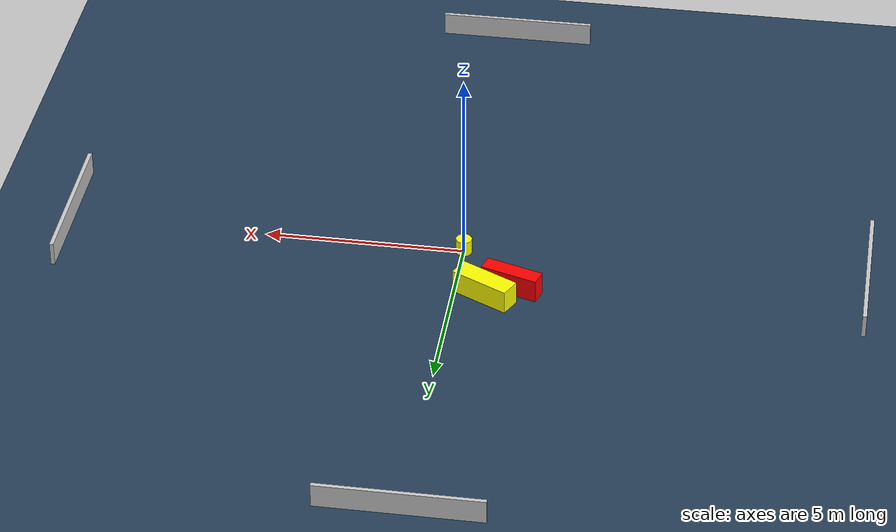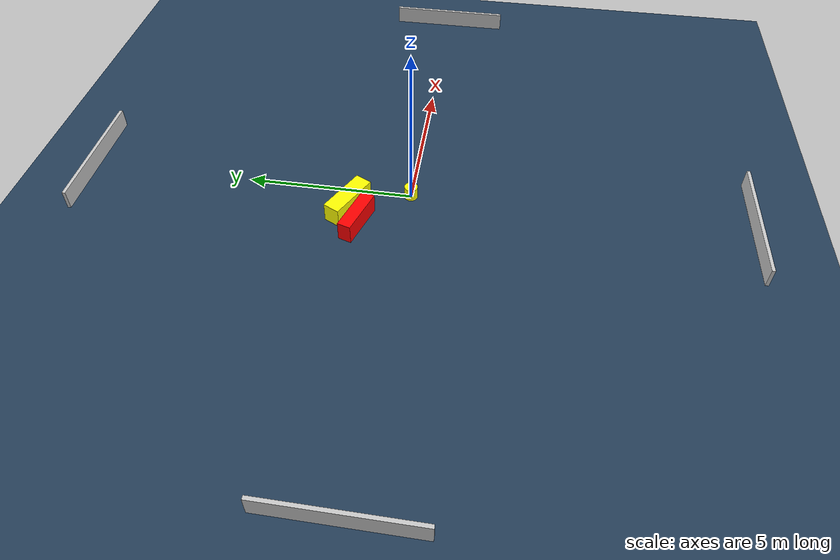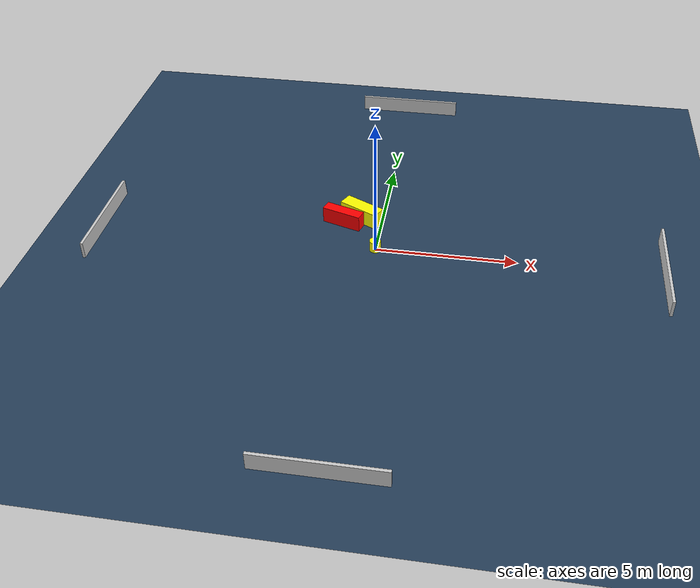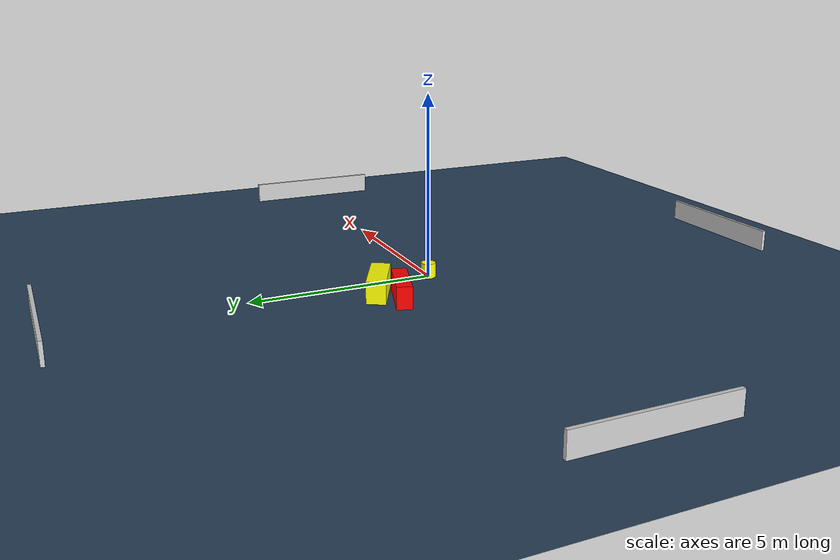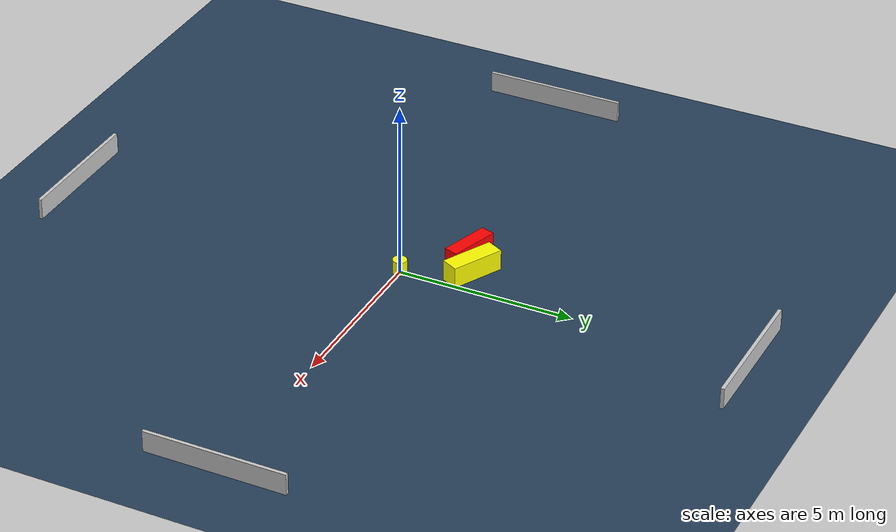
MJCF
<?xml version="1.0" ?>
<mujoco model="generated_environment">
  <option timestep="0.01" integrator="RK4" cone="elliptic"/>
  <default>
    <geom density="1"/>
  </default>
  <asset>
    <texture builtin="gradient" height="3072" name="skybox" rgb1="0.3 0.5 0.7" rgb2="0 0 0" type="skybox" width="512"/>
    <texture builtin="checker" height="300" name="groundplane" rgb1="0.2 0.3 0.4" rgb2="0.1 0.2 0.3" type="2d" width="300"/>
    <material name="groundplane" reflectance="0.2" texrepeat="5 5" texture="groundplane"/>
  </asset>
  <worldbody>
    <light dir="0 0 -1" directional="true" pos="0 0 1.5"/>
    <geom condim="3" friction="0.5 0.005 0.001" material="groundplane" name="floor" pos="0 0 0" size="0 0 0.05" type="plane"/>
    <body name="walls">
      <geom name="wall_1" condim="4" pos="-10.0 0.0 0.3" rgba="0.800000011920929 0.800000011920929 0.800000011920929 1.0" size="0.05 2.0 0.3" type="box"/>
      <geom name="wall_2" condim="4" pos="10.0 0.0 0.3" rgba="0.800000011920929 0.800000011920929 0.800000011920929 1.0" size="0.05 2.0 0.3" type="box"/>
      <geom name="wall_3" condim="4" pos="0.0 -10.0 0.3" rgba="0.800000011920929 0.800000011920929 0.800000011920929 1.0" size="2.0 0.05 0.3" type="box"/>
      <geom name="wall_4" condim="4" pos="0.0 10.0 0.3" rgba="0.800000011920929 0.800000011920929 0.800000011920929 1.0" size="2.0 0.05 0.3" type="box"/>
    </body>
    <body name="robot">
      <joint name="joint_x" type="slide" pos="0 0 0" axis="1 0 0"/>
      <joint name="joint_y" type="slide" pos="0 0 0" axis="0 1 0"/>
      <geom name="robot" type="cylinder" pos="0.0 0.0 0.2" size="0.2 0.2 0.0" mass="5.0" friction="1.0 0.005 0.0001" condim="4" rgba="1.0 1.0 0.0 1.0"/>
    </body>
    <body name="obstacle_1_movable">
      <geom name="obstacle_1_movable" condim="4" pos="-0.7622974857799412 1.7683603924511764 0.3" euler="0 0 63.206254417286765" friction="0.0 0.005 0.001" rgba="1.0 1.0 0.0 1.0" size="0.2577046163174814 0.7722722655354932 0.3" type="box" mass="0.1"/>
      <joint type="free"/>
    </body>
    <body name="obstacle_2_static">
      <geom name="obstacle_2_static" condim="4" pos="-1.3840609771238799 1.385163270166697 0.3" euler="0 0 162.51182627552018" friction="0.0 0.005 0.001" rgba="1.0 0.0 0.0 1.0" size="0.7308738916922124 0.20218944269064684 0.3" type="box"/>
    </body>
  </worldbody>
  <actuator>
    <motor name="actuator_x" joint="joint_x" gear="1" ctrlrange="-1 1"/>
    <motor name="actuator_y" joint="joint_y" gear="1" ctrlrange="-1 1"/>
  </actuator>
</mujoco>
